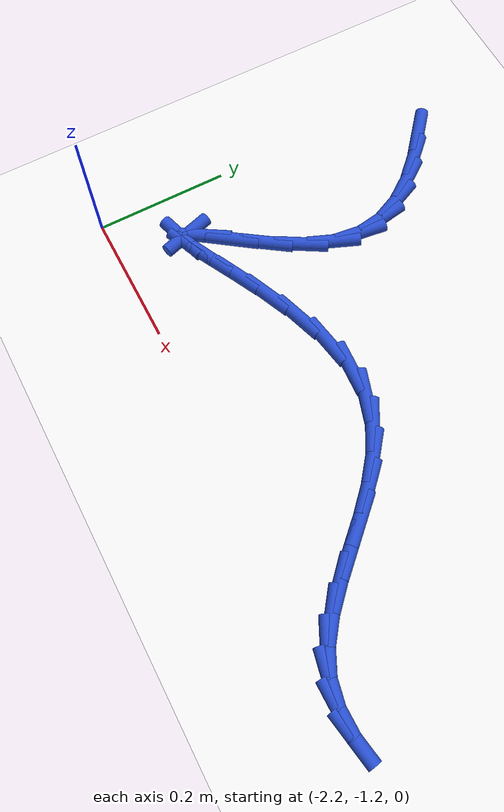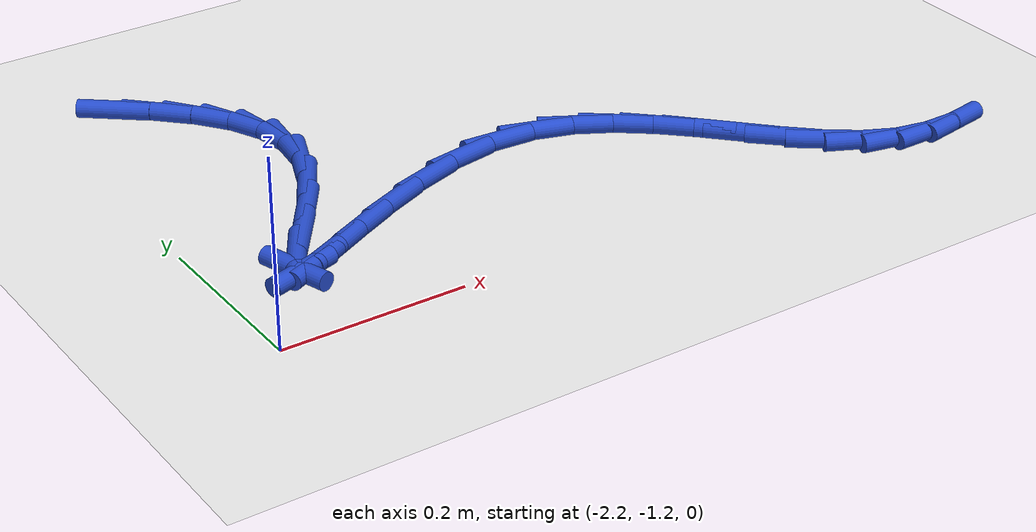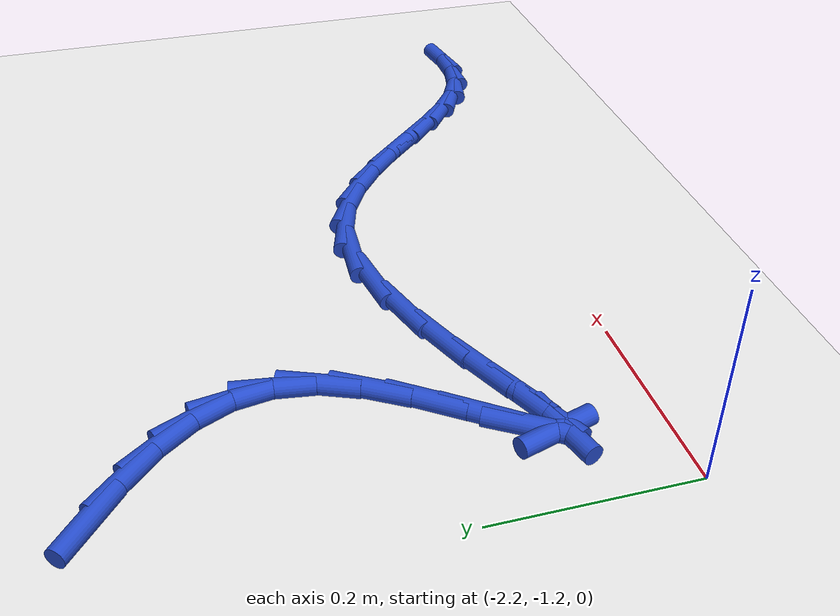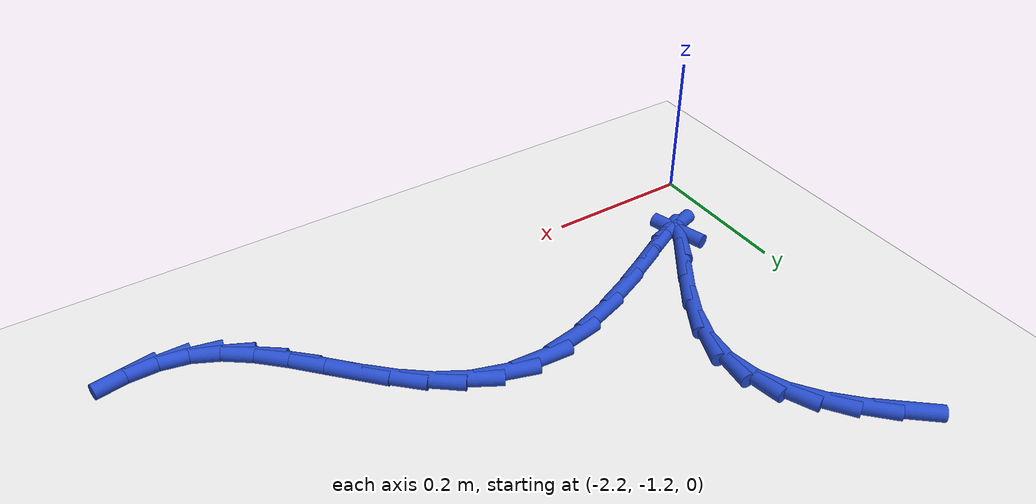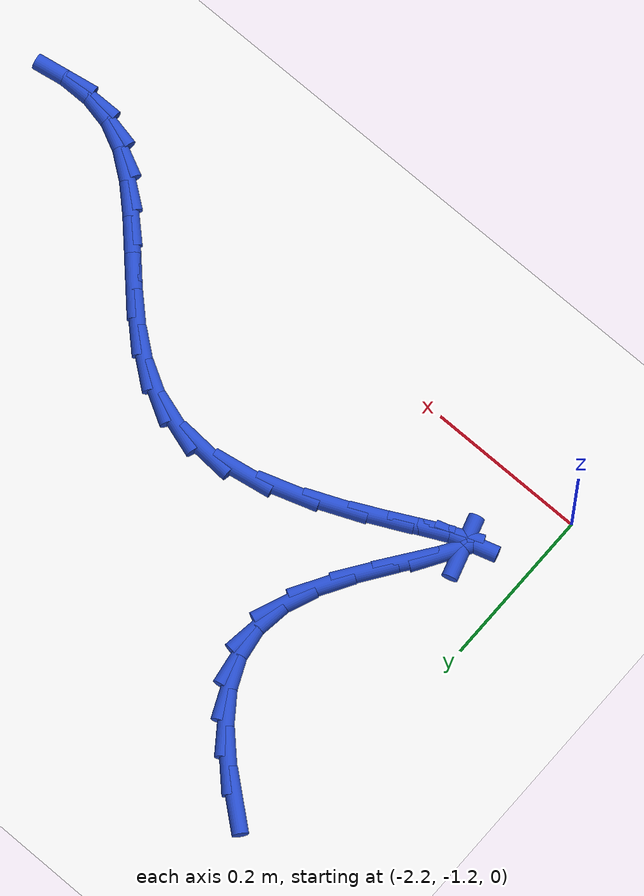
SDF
<sdf version="1.6">
 <world name="default">
  <model name="ground_plane">
   <static>1</static>
   <link name="link">
    <collision name="collision">
     <geometry><plane><normal>0 0 1</normal><size>100 100</size></plane></geometry>
     <surface><friction><ode><mu>100</mu><mu2>50</mu2></ode></friction></surface>
    </collision>
    <visual name="visual">
     <cast_shadows>0</cast_shadows>
     <geometry><plane><normal>0 0 1</normal><size>100 100</size></plane></geometry>
     <material>
      <script><uri>file://media/materials/scripts/gazebo.material</uri><name>Gazebo/WhiteGlow</name></script>
     </material>
    </visual>
   </link>
  </model>
  <model name="line">
   <link name="link_109">
    <pose>-2.1210295620062287 -0.6946596733136468 0.01 0 1.57 -0.6937288271728297</pose>
    <collision name="collision">
     <geometry><cylinder><radius>0.01</radius><length>0.08</length></cylinder></geometry>
    </collision>
    <visual name="visual">
     <material>
      <script><name>Gazebo/Blue</name><uri>file://media/materials/scripts/gazebo.material</uri></script>
     </material>
     <geometry><cylinder><radius>0.01</radius><length>0.08</length></cylinder></geometry>
    </visual>
   </link>
   <link name="link_110">
    <pose>-2.0847792142014967 -0.7248063439789438 0.01 0 1.57 -0.7936047453052892</pose>
    <collision name="collision">
     <geometry><cylinder><radius>0.01</radius><length>0.08</length></cylinder></geometry>
    </collision>
    <visual name="visual">
     <material>
      <script><name>Gazebo/Blue</name><uri>file://media/materials/scripts/gazebo.material</uri></script>
     </material>
     <geometry><cylinder><radius>0.01</radius><length>0.08</length></cylinder></geometry>
    </visual>
   </link>
   <link name="link_111">
    <pose>-2.053503414429426 -0.7565997378744015 0.01 0 1.57 -0.9411758859951982</pose>
    <collision name="collision">
     <geometry><cylinder><radius>0.01</radius><length>0.08</length></cylinder></geometry>
    </collision>
    <visual name="visual">
     <material>
      <script><name>Gazebo/Blue</name><uri>file://media/materials/scripts/gazebo.material</uri></script>
     </material>
     <geometry><cylinder><radius>0.01</radius><length>0.08</length></cylinder></geometry>
    </visual>
   </link>
   <link name="link_112">
    <pose>-2.0288914497619794 -0.7903826220411578 0.01 0 1.57 -1.1477805640768979</pose>
    <collision name="collision">
     <geometry><cylinder><radius>0.01</radius><length>0.08</length></cylinder></geometry>
    </collision>
    <visual name="visual">
     <material>
      <script><name>Gazebo/Blue</name><uri>file://media/materials/scripts/gazebo.material</uri></script>
     </material>
     <geometry><cylinder><radius>0.01</radius><length>0.08</length></cylinder></geometry>
    </visual>
   </link>
   <link name="link_113">
    <pose>-2.0126326072711187 -0.8264977635203532 0.01 0 1.57 -1.4118895436739578</pose>
    <collision name="collision">
     <geometry><cylinder><radius>0.01</radius><length>0.08</length></cylinder></geometry>
    </collision>
    <visual name="visual">
     <material>
      <script><name>Gazebo/Blue</name><uri>file://media/materials/scripts/gazebo.material</uri></script>
     </material>
     <geometry><cylinder><radius>0.01</radius><length>0.08</length></cylinder></geometry>
    </visual>
   </link>
   <link name="link_114">
    <pose>-2.006416174028807 -0.8652879293531262 0.01 0 1.57 1.439634699491193</pose>
    <collision name="collision">
     <geometry><cylinder><radius>0.01</radius><length>0.08</length></cylinder></geometry>
    </collision>
    <visual name="visual">
     <material>
      <script><name>Gazebo/Blue</name><uri>file://media/materials/scripts/gazebo.material</uri></script>
     </material>
     <geometry><cylinder><radius>0.01</radius><length>0.08</length></cylinder></geometry>
    </visual>
   </link>
   <link name="link_115">
    <pose>-2.0119314371070067 -0.9070958865806156 0.01 0 1.57 1.1851996808374936</pose>
    <collision name="collision">
     <geometry><cylinder><radius>0.01</radius><length>0.08</length></cylinder></geometry>
    </collision>
    <visual name="visual">
     <material>
      <script><name>Gazebo/Blue</name><uri>file://media/materials/scripts/gazebo.material</uri></script>
     </material>
     <geometry><cylinder><radius>0.01</radius><length>0.08</length></cylinder></geometry>
    </visual>
   </link>
   <link name="link_116">
    <pose>-2.0301042409662147 -0.9518656605870598 0.01 0 1.57 1.036577514920877</pose>
    <collision name="collision">
     <geometry><cylinder><radius>0.01</radius><length>0.08</length></cylinder></geometry>
    </collision>
    <visual name="visual">
     <material>
      <script><name>Gazebo/Blue</name><uri>file://media/materials/scripts/gazebo.material</uri></script>
     </material>
     <geometry><cylinder><radius>0.01</radius><length>0.08</length></cylinder></geometry>
    </visual>
   </link>
   <link name="link_117">
    <pose>-2.056721038315809 -0.9968570021936491 0.01 0 1.57 0.9637923597540333</pose>
    <collision name="collision">
     <geometry><cylinder><radius>0.01</radius><length>0.08</length></cylinder></geometry>
    </collision>
    <visual name="visual">
     <material>
      <script><name>Gazebo/Blue</name><uri>file://media/materials/scripts/gazebo.material</uri></script>
     </material>
     <geometry><cylinder><radius>0.01</radius><length>0.08</length></cylinder></geometry>
    </visual>
   </link>
   <link name="link_118">
    <pose>-2.0854478514689325 -1.0382221736993982 0.01 0 1.57 0.9448908569025699</pose>
    <collision name="collision">
     <geometry><cylinder><radius>0.01</radius><length>0.08</length></cylinder></geometry>
    </collision>
    <visual name="visual">
     <material>
      <script><name>Gazebo/Blue</name><uri>file://media/materials/scripts/gazebo.material</uri></script>
     </material>
     <geometry><cylinder><radius>0.01</radius><length>0.08</length></cylinder></geometry>
    </visual>
   </link>
   <link name="link_119">
    <pose>-2.1099440520995767 -1.0721099638129914 0.01 0 1.57 1.017779992016912</pose>
    <collision name="collision">
     <geometry><cylinder><radius>0.01</radius><length>0.08</length></cylinder></geometry>
    </collision>
    <visual name="visual">
     <material>
      <script><name>Gazebo/Blue</name><uri>file://media/materials/scripts/gazebo.material</uri></script>
     </material>
     <geometry><cylinder><radius>0.01</radius><length>0.08</length></cylinder></geometry>
    </visual>
   </link>
   <link name="link_120">
    <pose>-2.1238690118817325 -1.09466916124311 0.01 0 1.57 -1.273834267409161</pose>
    <collision name="collision">
     <geometry><cylinder><radius>0.01</radius><length>0.08</length></cylinder></geometry>
    </collision>
    <visual name="visual">
     <material>
      <script><name>Gazebo/Blue</name><uri>file://media/materials/scripts/gazebo.material</uri></script>
     </material>
     <geometry><cylinder><radius>0.01</radius><length>0.08</length></cylinder></geometry>
    </visual>
   </link>
   <link name="link_121">
    <pose>-2.1214675309209037 -1.10251686314228 0.01 0 1.57 0.29457128672792804</pose>
    <collision name="collision">
     <geometry><cylinder><radius>0.01</radius><length>0.08</length></cylinder></geometry>
    </collision>
    <visual name="visual">
     <material>
      <script><name>Gazebo/Blue</name><uri>file://media/materials/scripts/gazebo.material</uri></script>
     </material>
     <geometry><cylinder><radius>0.01</radius><length>0.08</length></cylinder></geometry>
    </visual>
   </link>
   <link name="link_122">
    <pose>-2.1026607845134153 -1.0968109342260541 0.01 0 1.57 0.4511058988571476</pose>
    <collision name="collision">
     <geometry><cylinder><radius>0.01</radius><length>0.08</length></cylinder></geometry>
    </collision>
    <visual name="visual">
     <material>
      <script><name>Gazebo/Blue</name><uri>file://media/materials/scripts/gazebo.material</uri></script>
     </material>
     <geometry><cylinder><radius>0.01</radius><length>0.08</length></cylinder></geometry>
    </visual>
   </link>
   <link name="link_123">
    <pose>-2.070558689096935 -1.0812600452886447 0.01 0 1.57 0.4736844798192667</pose>
    <collision name="collision">
     <geometry><cylinder><radius>0.01</radius><length>0.08</length></cylinder></geometry>
    </collision>
    <visual name="visual">
     <material>
      <script><name>Gazebo/Blue</name><uri>file://media/materials/scripts/gazebo.material</uri></script>
     </material>
     <geometry><cylinder><radius>0.01</radius><length>0.08</length></cylinder></geometry>
    </visual>
   </link>
   <link name="link_124">
    <pose>-2.0283065807392893 -1.0596012007530853 0.01 0 1.57 0.4538783676226132</pose>
    <collision name="collision">
     <geometry><cylinder><radius>0.01</radius><length>0.08</length></cylinder></geometry>
    </collision>
    <visual name="visual">
     <material>
      <script><name>Gazebo/Blue</name><uri>file://media/materials/scripts/gazebo.material</uri></script>
     </material>
     <geometry><cylinder><radius>0.01</radius><length>0.08</length></cylinder></geometry>
    </visual>
   </link>
   <link name="link_125">
    <pose>-1.979049795508303 -1.035571405042411 0.01 0 1.57 0.40329521122316375</pose>
    <collision name="collision">
     <geometry><cylinder><radius>0.01</radius><length>0.08</length></cylinder></geometry>
    </collision>
    <visual name="visual">
     <material>
      <script><name>Gazebo/Blue</name><uri>file://media/materials/scripts/gazebo.material</uri></script>
     </material>
     <geometry><cylinder><radius>0.01</radius><length>0.08</length></cylinder></geometry>
    </visual>
   </link>
   <link name="link_126">
    <pose>-1.9259336694718003 -1.0129076625796554 0.01 0 1.57 0.31533863728480666</pose>
    <collision name="collision">
     <geometry><cylinder><radius>0.01</radius><length>0.08</length></cylinder></geometry>
    </collision>
    <visual name="visual">
     <material>
      <script><name>Gazebo/Blue</name><uri>file://media/materials/scripts/gazebo.material</uri></script>
     </material>
     <geometry><cylinder><radius>0.01</radius><length>0.08</length></cylinder></geometry>
    </visual>
   </link>
   <link name="link_127">
    <pose>-1.8721035386976075 -0.9953469777878527 0.01 0 1.57 0.16806540708750714</pose>
    <collision name="collision">
     <geometry><cylinder><radius>0.01</radius><length>0.08</length></cylinder></geometry>
    </collision>
    <visual name="visual">
     <material>
      <script><name>Gazebo/Blue</name><uri>file://media/materials/scripts/gazebo.material</uri></script>
     </material>
     <geometry><cylinder><radius>0.01</radius><length>0.08</length></cylinder></geometry>
    </visual>
   </link>
   <link name="link_128">
    <pose>-1.82070473925355 -0.9866263550900378 0.01 0 1.57 -0.061863514380335154</pose>
    <collision name="collision">
     <geometry><cylinder><radius>0.01</radius><length>0.08</length></cylinder></geometry>
    </collision>
    <visual name="visual">
     <material>
      <script><name>Gazebo/Blue</name><uri>file://media/materials/scripts/gazebo.material</uri></script>
     </material>
     <geometry><cylinder><radius>0.01</radius><length>0.08</length></cylinder></geometry>
    </visual>
   </link>
   <link name="link_129">
    <pose>-1.7742295930421221 -0.989505144369471 0.01 0 1.57 -0.307919723436671</pose>
    <collision name="collision">
     <geometry><cylinder><radius>0.01</radius><length>0.08</length></cylinder></geometry>
    </collision>
    <visual name="visual">
     <material>
      <script><name>Gazebo/Blue</name><uri>file://media/materials/scripts/gazebo.material</uri></script>
     </material>
     <geometry><cylinder><radius>0.01</radius><length>0.08</length></cylinder></geometry>
    </visual>
   </link>
   <link name="link_130">
    <pose>-1.7325175914618591 -1.002771033142596 0.01 0 1.57 -0.5159883884827727</pose>
    <collision name="collision">
     <geometry><cylinder><radius>0.01</radius><length>0.08</length></cylinder></geometry>
    </collision>
    <visual name="visual">
     <material>
      <script><name>Gazebo/Blue</name><uri>file://media/materials/scripts/gazebo.material</uri></script>
     </material>
     <geometry><cylinder><radius>0.01</radius><length>0.08</length></cylinder></geometry>
    </visual>
   </link>
   <link name="link_131">
    <pose>-1.6947346662099607 -1.0242032948136053 0.01 0 1.57 -0.6681599378400482</pose>
    <collision name="collision">
     <geometry><cylinder><radius>0.01</radius><length>0.08</length></cylinder></geometry>
    </collision>
    <visual name="visual">
     <material>
      <script><name>Gazebo/Blue</name><uri>file://media/materials/scripts/gazebo.material</uri></script>
     </material>
     <geometry><cylinder><radius>0.01</radius><length>0.08</length></cylinder></geometry>
    </visual>
   </link>
   <link name="link_132">
    <pose>-1.6600467488923465 -1.0515812026500302 0.01 0 1.57 -0.7645582000627207</pose>
    <collision name="collision">
     <geometry><cylinder><radius>0.01</radius><length>0.08</length></cylinder></geometry>
    </collision>
    <visual name="visual">
     <material>
      <script><name>Gazebo/Blue</name><uri>file://media/materials/scripts/gazebo.material</uri></script>
     </material>
     <geometry><cylinder><radius>0.01</radius><length>0.08</length></cylinder></geometry>
    </visual>
   </link>
   <link name="link_133">
    <pose>-1.6276197711149327 -1.0826840299194036 0.01 0 1.57 -0.8106558931235855</pose>
    <collision name="collision">
     <geometry><cylinder><radius>0.01</radius><length>0.08</length></cylinder></geometry>
    </collision>
    <visual name="visual">
     <material>
      <script><name>Gazebo/Blue</name><uri>file://media/materials/scripts/gazebo.material</uri></script>
     </material>
     <geometry><cylinder><radius>0.01</radius><length>0.08</length></cylinder></geometry>
    </visual>
   </link>
   <link name="link_134">
    <pose>-1.5966196644836406 -1.1152910498892583 0.01 0 1.57 -0.8092016069352429</pose>
    <collision name="collision">
     <geometry><cylinder><radius>0.01</radius><length>0.08</length></cylinder></geometry>
    </collision>
    <visual name="visual">
     <material>
      <script><name>Gazebo/Blue</name><uri>file://media/materials/scripts/gazebo.material</uri></script>
     </material>
     <geometry><cylinder><radius>0.01</radius><length>0.08</length></cylinder></geometry>
    </visual>
   </link>
   <link name="link_135">
    <pose>-1.5662123606043876 -1.147181535827126 0.01 0 1.57 -0.7569613126394604</pose>
    <collision name="collision">
     <geometry><cylinder><radius>0.01</radius><length>0.08</length></cylinder></geometry>
    </collision>
    <visual name="visual">
     <material>
      <script><name>Gazebo/Blue</name><uri>file://media/materials/scripts/gazebo.material</uri></script>
     </material>
     <geometry><cylinder><radius>0.01</radius><length>0.08</length></cylinder></geometry>
    </visual>
   </link>
   <link name="link_136">
    <pose>-1.5355637910830933 -1.1761347610005395 0.01 0 1.57 -0.6435477094179428</pose>
    <collision name="collision">
     <geometry><cylinder><radius>0.01</radius><length>0.08</length></cylinder></geometry>
    </collision>
    <visual name="visual">
     <material>
      <script><name>Gazebo/Blue</name><uri>file://media/materials/scripts/gazebo.material</uri></script>
     </material>
     <geometry><cylinder><radius>0.01</radius><length>0.08</length></cylinder></geometry>
    </visual>
   </link>
   <link name="link_137">
    <pose>-1.5038398875256764 -1.1999299986770309 0.01 0 1.57 -0.45415824914129294</pose>
    <collision name="collision">
     <geometry><cylinder><radius>0.01</radius><length>0.08</length></cylinder></geometry>
    </collision>
    <visual name="visual">
     <material>
      <script><name>Gazebo/Blue</name><uri>file://media/materials/scripts/gazebo.material</uri></script>
     </material>
     <geometry><cylinder><radius>0.01</radius><length>0.08</length></cylinder></geometry>
    </visual>
   </link>
   <link name="link_138">
    <pose>-1.4702074729178145 -1.2163491404051967 0.01 0 1.57 -0.21065190365534936</pose>
    <collision name="collision">
     <geometry><cylinder><radius>0.01</radius><length>0.08</length></cylinder></geometry>
    </collision>
    <visual name="visual">
     <material>
      <script><name>Gazebo/Blue</name><uri>file://media/materials/scripts/gazebo.material</uri></script>
     </material>
     <geometry><cylinder><radius>0.01</radius><length>0.08</length></cylinder></geometry>
    </visual>
   </link>
   <link name="link_139">
    <pose>-1.4341357100772105 -1.2240621511377947 0.01 0 1.57 0.0038114981797022773</pose>
    <collision name="collision">
     <geometry><cylinder><radius>0.01</radius><length>0.08</length></cylinder></geometry>
    </collision>
    <visual name="visual">
     <material>
      <script><name>Gazebo/Blue</name><uri>file://media/materials/scripts/gazebo.material</uri></script>
     </material>
     <geometry><cylinder><radius>0.01</radius><length>0.08</length></cylinder></geometry>
    </visual>
   </link>
   <link name="link_140">
    <pose>-1.3958349681574602 -1.2239161672227576 0.01 0 1.57 0.16826881534074434</pose>
    <collision name="collision">
     <geometry><cylinder><radius>0.01</radius><length>0.08</length></cylinder></geometry>
    </collision>
    <visual name="visual">
     <material>
      <script><name>Gazebo/Blue</name><uri>file://media/materials/scripts/gazebo.material</uri></script>
     </material>
     <geometry><cylinder><radius>0.01</radius><length>0.08</length></cylinder></geometry>
    </visual>
   </link>
  </model>
 </world>
</sdf>
